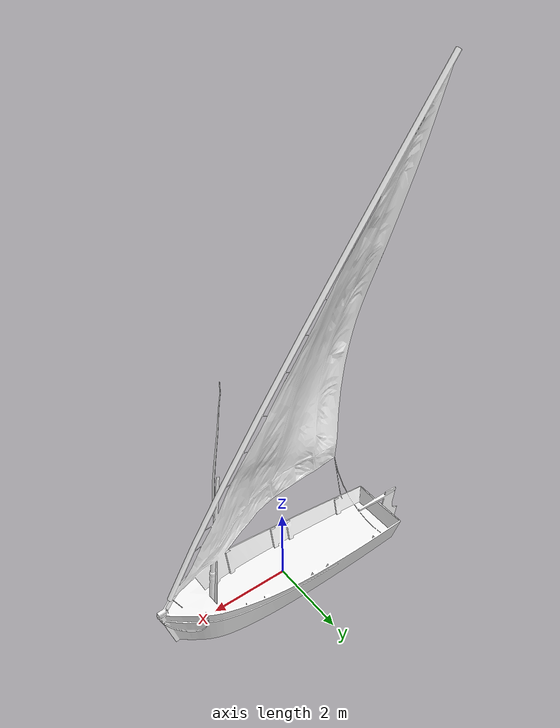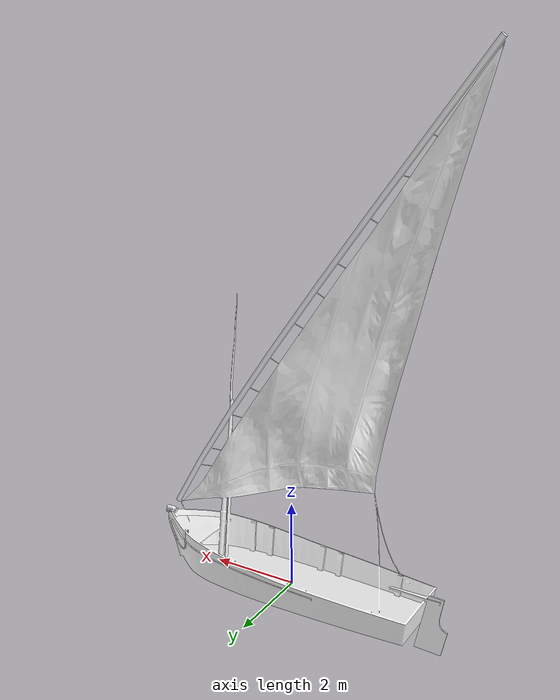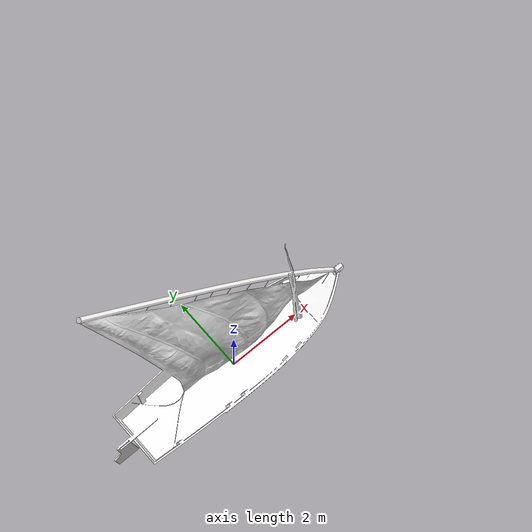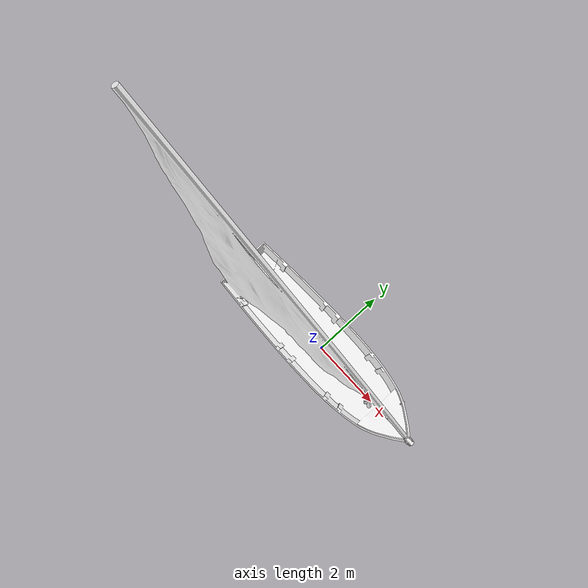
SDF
<?xml version='1.0' ?>
<sdf version="1.6">
  <model name="vessel_a">
    <static>false</static>
    <link name="link">
      <enable_wind>true</enable_wind>
      <kinematic>true</kinematic>
      <inertial>
        <mass>1000.0</mass>
        <inertia>
          <ixx>640.83</ixx>
          <ixy>0.0</ixy>
          <ixz>0.0</ixz>
          <iyy>4203.33</iyy>
          <iyz>0.0</iyz>
          <izz>4604.17</izz>
        </inertia>
      </inertial>
      <visual name="visual">
        <geometry>
          <mesh>
            <uri>model://VesselA/meshes/Boat01.dae</uri>
          </mesh>
        </geometry>
        <material>
          <diffuse>1.0 1.0 1.0</diffuse>
          <specular>1.0 1.0 1.0</specular>
          <script>
            <uri>model://VesselA/materials/scripts</uri>
            <uri>model://VesselA/materials/textures</uri>
            <name>VesselA/tex</name>
          </script>
        </material>
      </visual>
      <collision name="collision">
        <geometry>
          <mesh>
            <uri>model://VesselA/meshes/Boat01.dae</uri>
          </mesh>
        </geometry>
      </collision>
    </link>
  </model>
</sdf>
